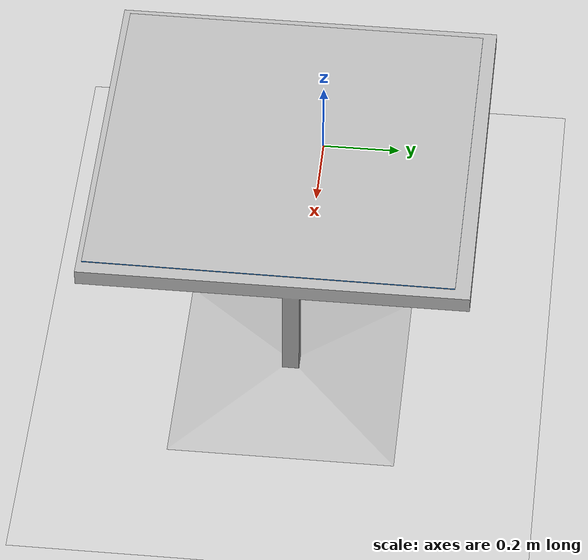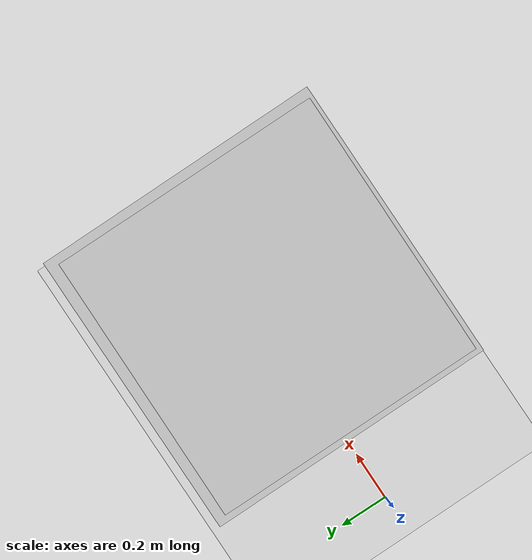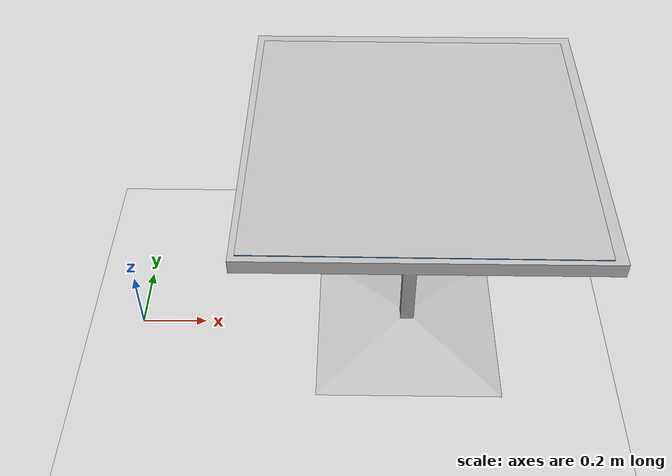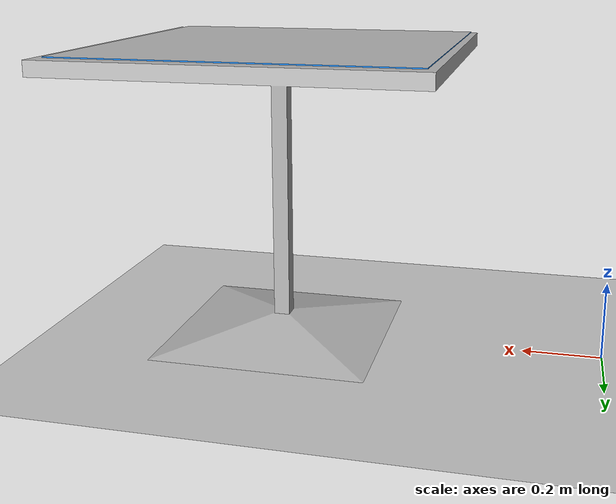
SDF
<sdf version="1.6">
 <world name="default">
  <model name="ground_plane">
   <static>1</static>
   <link name="link">
    <collision name="collision">
     <geometry><plane><normal>0 0 1</normal><size>100 100</size></plane></geometry>
     <surface>
      <contact><collide_bitmask>65535</collide_bitmask></contact>
      <friction><ode><mu>100</mu><mu2>50</mu2></ode></friction>
     </surface>
    </collision>
    <visual name="visual">
     <cast_shadows>0</cast_shadows>
     <geometry><plane><normal>0 0 1</normal><size>100 100</size></plane></geometry>
     <material>
      <script><uri>file://media/materials/scripts/gazebo.material</uri><name>Gazebo/Grey</name></script>
     </material>
    </visual>
   </link>
  </model>
  <model name="cafe_table">
   <static>1</static>
   <link name="link">
    <collision name="surface">
     <pose>0 0 0.755 0 -0 0</pose>
     <geometry><box><size>0.913 0.913 0.04</size></box></geometry>
    </collision>
    <collision name="column">
     <pose>0 0 0.37 0 -0 0</pose>
     <geometry><box><size>0.042 0.042 0.74</size></box></geometry>
    </collision>
    <collision name="base">
     <pose>0 0 0.02 0 -0 0</pose>
     <geometry><box><size>0.56 0.56 0.04</size></box></geometry>
    </collision>
    <visual name="visual">
     <geometry><mesh><uri>model://cafe_table/meshes/cafe_table.dae</uri></mesh></geometry>
    </visual>
   </link>
   <pose>0.841787 -0.000253 0 0 -0 0</pose>
  </model>
  <model name="monopoly">
   <static>1</static>
   <link name="link">
    <inertial><pose>1 0 1 0 -0 0</pose><mass>0.25</mass></inertial>
    <collision name="collision">
     <geometry>
      <mesh><uri>model://monopoly/meshes/myMonopoly.dae</uri><scale>1.75 1.75 1.75</scale></mesh>
     </geometry>
    </collision>
    <visual name="visual">
     <geometry>
      <mesh><uri>model://monopoly/meshes/myMonopoly.dae</uri><scale>1.75 1.75 1.75</scale></mesh>
     </geometry>
    </visual>
   </link>
   <pose>0.833907 -0.008489 0.779 0 -0 3.13686</pose>
  </model>
 </world>
</sdf>
